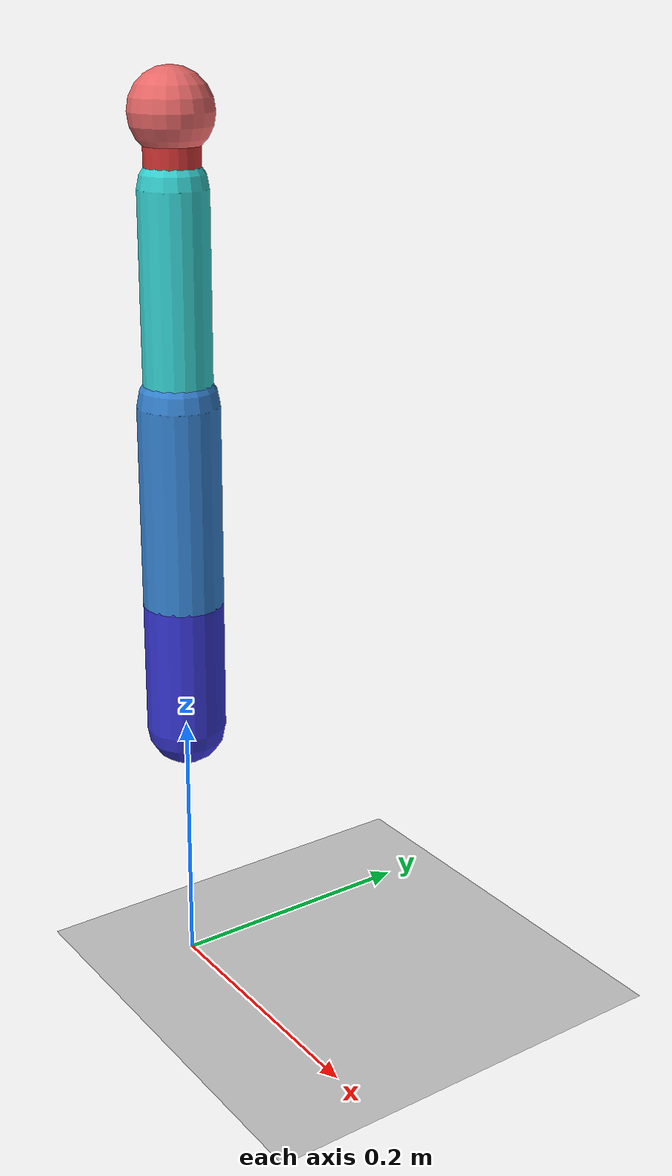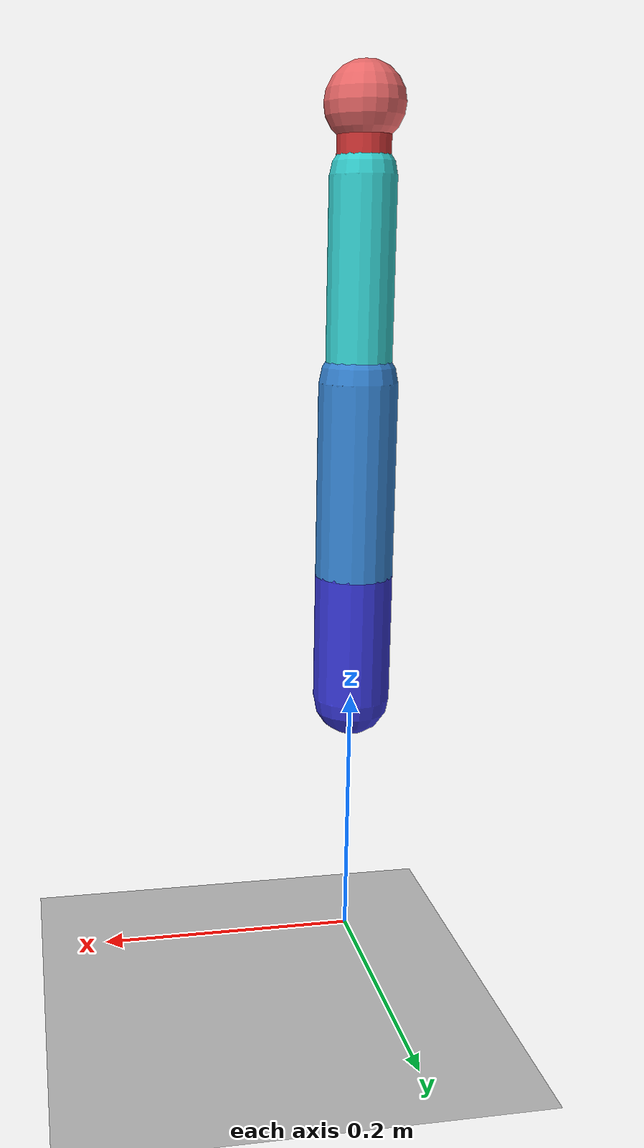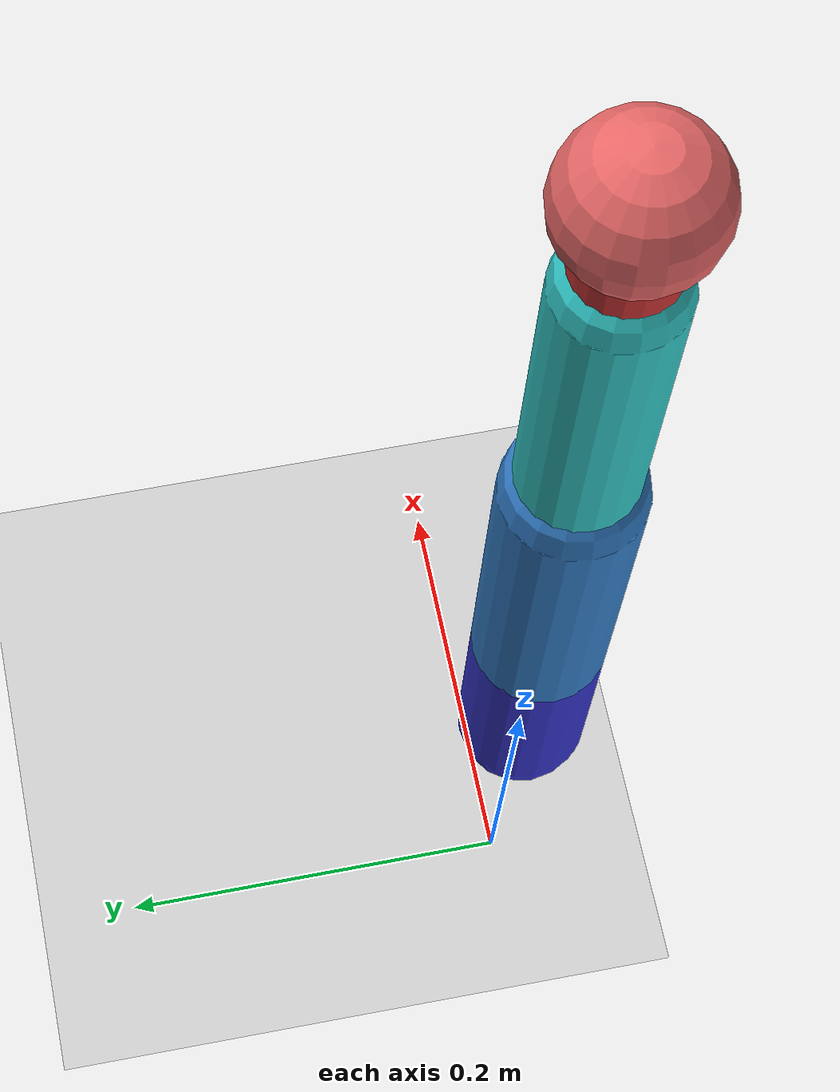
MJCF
<mujoco model="g1_arm_demo">
  <option timestep="0.01" gravity="0 0 -9.81"/>

  <worldbody>
    <!-- jen stůl jako referenční plocha -->
    <body name="table" pos="0 0 0">
      <geom type="plane" size="1 1 0.01" rgba="0.8 0.8 0.8 1"/>
    </body>

    <!-- základna paže (rameno robota) -->
    <body name="base" pos="0 0 0.2">
      <!-- první kloub: shoulder_yaw -->
      <joint name="shoulder_yaw" type="hinge" axis="0 0 1" range="-1.57 1.57" damping="2"/>
      <geom type="capsule" fromto="0 0 0 0 0 0.1" size="0.03" rgba="0.2 0.2 0.8 1"/>

      <body name="upper_arm" pos="0 0 0.1">
        <!-- druhý kloub: shoulder_pitch -->
        <joint name="shoulder_pitch" type="hinge" axis="0 1 0" range="-1.57 1.57" damping="2"/>
        <geom type="capsule" fromto="0 0 0 0 0 0.15" size="0.03" rgba="0.2 0.5 0.8 1"/>

        <body name="forearm" pos="0 0 0.15">
          <!-- třetí kloub: elbow_pitch -->
          <joint name="elbow_pitch" type="hinge" axis="0 1 0" range="0 2.35" damping="2"/>
          <geom type="capsule" fromto="0 0 0 0 0 0.15" size="0.025" rgba="0.2 0.8 0.8 1"/>

          <body name="wrist" pos="0 0 0.15">
            <!-- čtvrtý kloub: wrist_yaw -->
            <joint name="wrist_yaw" type="hinge" axis="0 0 1" range="-1.57 1.57" damping="1"/>
            <geom type="capsule" fromto="0 0 0 0 0 0.05" size="0.02" rgba="0.8 0.2 0.2 1"/>

            <body name="gripper" pos="0 0 0.05">
              <geom type="sphere" size="0.03" rgba="0.9 0.4 0.4 1"/>
            </body>
          </body>
        </body>
      </body>
    </body>
  </worldbody>

  <actuator>
    <position name="act_shoulder_yaw"    joint="shoulder_yaw"    kp="200"/>
    <position name="act_shoulder_pitch"  joint="shoulder_pitch"  kp="200"/>
    <position name="act_elbow_pitch"     joint="elbow_pitch"     kp="200"/>
    <position name="act_wrist_yaw"       joint="wrist_yaw"       kp="100"/>
  </actuator>

</mujoco>
